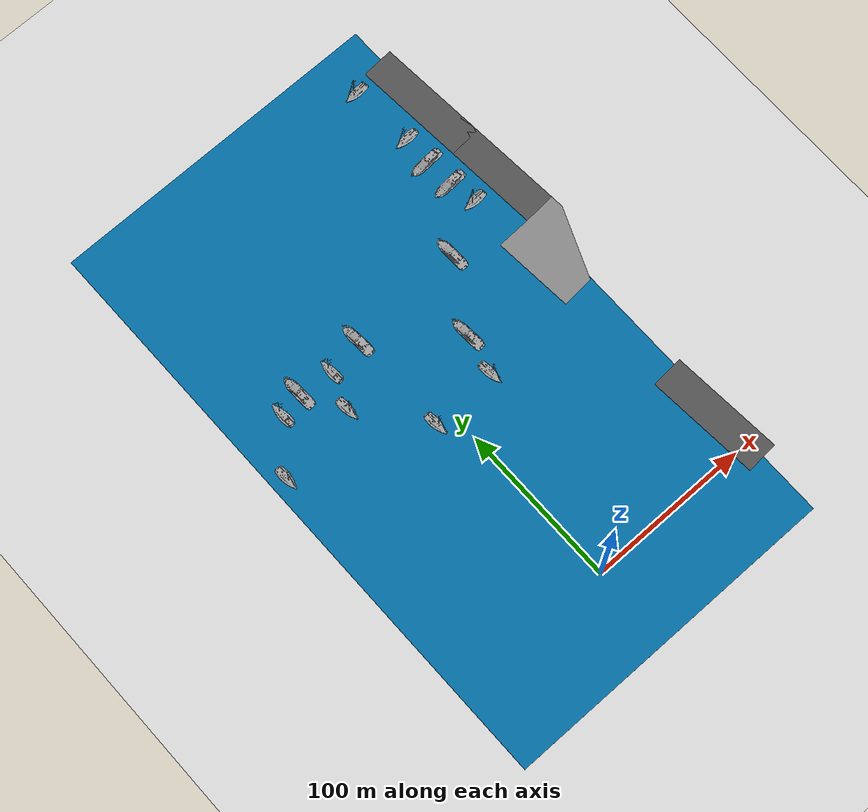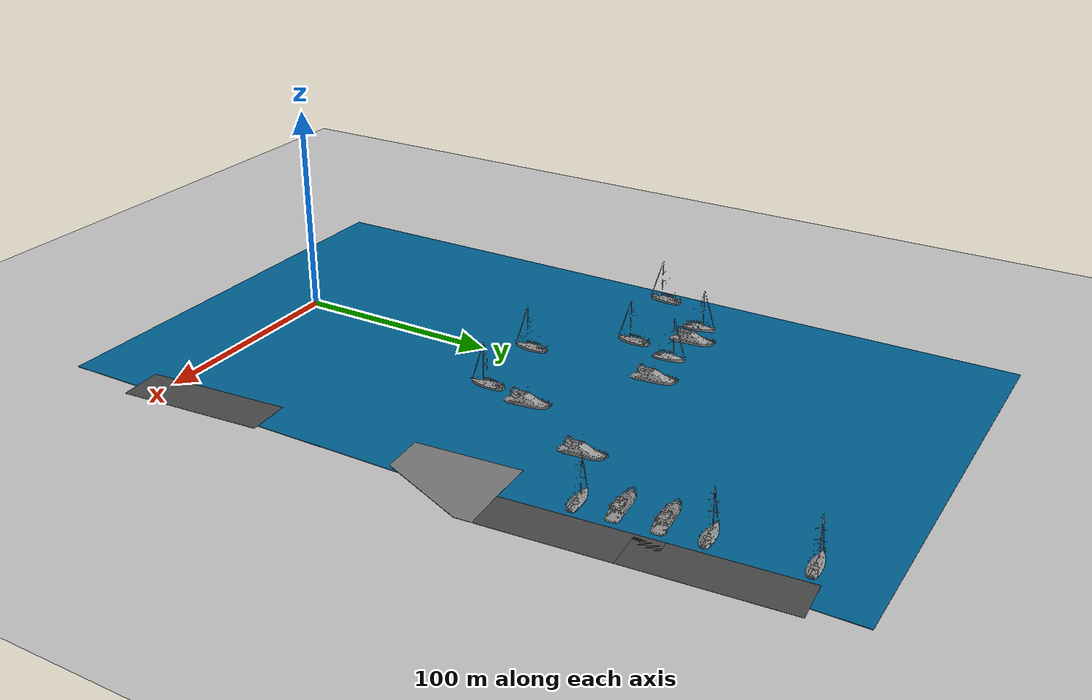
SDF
<sdf version="1.7">
 <world name="default">
  <model name="ground_plane">
   <static>1</static>
   <link name="link">
    <collision name="collision">
     <geometry><plane><normal>0 0 1</normal><size>100 100</size></plane></geometry>
     <surface><friction><ode><mu>100</mu><mu2>50</mu2></ode></friction></surface>
    </collision>
    <visual name="visual">
     <cast_shadows>0</cast_shadows>
     <geometry><plane><normal>0 0 1</normal><size>100 100</size></plane></geometry>
     <material>
      <script><uri>file://media/materials/scripts/gazebo.material</uri><name>Gazebo/Grey</name></script>
     </material>
    </visual>
   </link>
  </model>
  <model name="asphalt_plane">
   <link name="link">
    <inertial>
     <mass>1</mass>
     <inertia><ixx>1</ixx><ixy>0</ixy><ixz>0</ixz><iyy>1</iyy><iyz>0</iyz><izz>1</izz></inertia>
    </inertial>
    <visual name="visual">
     <cast_shadows>0</cast_shadows>
     <geometry><box><size>70 20 0.1</size></box></geometry>
     <material>
      <script>
       <uri>model://asphalt_plane/materials/scripts</uri>
       <uri>model://asphalt_plane/materials/textures</uri>
       <name>vrc/asphalt</name>
      </script>
      <shader type="pixel"><normal_map>__default__</normal_map></shader>
      <ambient>0.5 0.5 0.5 1</ambient>
      <diffuse>0.5 0.5 0.5 1</diffuse>
      <specular>0.2 0.2 0.2 1</specular>
      <emissive>0 0 0 1</emissive>
     </material>
    </visual>
    <collision name="collision">
     <geometry><box><size>70 20 0.1</size></box></geometry>
     <surface>
      <friction>
       <ode><mu>1</mu><mu2>1</mu2><fdir1>0 0 0</fdir1><slip1>0.001</slip1><slip2>1e-05</slip2></ode>
       <torsional>
        <coefficient>1</coefficient>
        <patch_radius>0</patch_radius>
        <surface_radius>0</surface_radius>
        <use_patch_radius>1</use_patch_radius>
        <ode><slip>0</slip></ode>
       </torsional>
      </friction>
      <bounce><restitution_coefficient>0</restitution_coefficient><threshold>1e+06</threshold></bounce>
      <contact>
       <collide_without_contact>0</collide_without_contact>
       <collide_without_contact_bitmask>1</collide_without_contact_bitmask>
       <collide_bitmask>1</collide_bitmask>
       <ode>
        <soft_cfm>0</soft_cfm>
        <soft_erp>0.2</soft_erp>
        <kp>1e+13</kp>
        <kd>1</kd>
        <max_vel>0.01</max_vel>
        <min_depth>0</min_depth>
       </ode>
       <bullet>
        <split_impulse>1</split_impulse>
        <split_impulse_penetration_threshold>-0.01</split_impulse_penetration_threshold>
        <soft_cfm>0</soft_cfm>
        <soft_erp>0.2</soft_erp>
        <kp>1e+13</kp>
        <kd>1</kd>
       </bullet>
      </contact>
     </surface>
    </collision>
   </link>
   <static>1</static>
   <pose>105.889 23.3175 1.215 0 0 -1.498</pose>
  </model>
  <model name="sailboat_1_clone_0_clone_4">
   <static>1</static>
   <link name="link">
    <visual name="visual">
     <pose>0 0 10.5 1.57 -0 0</pose>
     <geometry>
      <mesh>
       <uri>/home/albert/marinero_ws/src/marinero_simulations/models/sailboat_1/meshes/Sailboat.stl</uri>
       <scale>1800 1800 1800</scale>
      </mesh>
     </geometry>
     <material>
      <script><uri>file://media/materials/scripts/gazebo.material</uri><name>Gazebo/Grey</name></script>
     </material>
    </visual>
    <collision name="collision">
     <pose>0 0 10.5 1.57 -0 0</pose>
     <geometry>
      <mesh>
       <uri>/home/albert/marinero_ws/src/marinero_simulations/models/sailboat_1/meshes/Sailboat.stl</uri>
       <scale>1800 1800 1800</scale>
      </mesh>
     </geometry>
    </collision>
   </link>
   <pose>-41.2957 158.662 -0.195807 0 -0 1.61242</pose>
  </model>
  <model name="yacht_1_clone_2">
   <static>1</static>
   <link name="link">
    <visual name="visual">
     <geometry>
      <mesh>
       <uri>/home/albert/marinero_ws/src/marinero_simulations/models/yacht_1/meshes/Yacht_v2.dae</uri>
       <scale>2.5 2.5 2.5</scale>
      </mesh>
     </geometry>
     <material>
      <script><uri>file://media/materials/scripts/gazebo.material</uri><name>Gazebo/Grey</name></script>
     </material>
    </visual>
    <collision name="collision">
     <geometry>
      <mesh>
       <uri>/home/albert/marinero_ws/src/marinero_simulations/models/yacht_1/meshes/Yacht_v2.dae</uri>
       <scale>2.5 2.5 2.5</scale>
      </mesh>
     </geometry>
    </collision>
   </link>
   <pose>-55.014 181.756 0.645733 0 0 -3.09722</pose>
  </model>
  <model name="sailboat_1_clone_1_clone">
   <static>1</static>
   <link name="link">
    <visual name="visual">
     <pose>0 0 10.5 1.57 -0 0</pose>
     <geometry>
      <mesh>
       <uri>/home/albert/marinero_ws/src/marinero_simulations/models/sailboat_1/meshes/Sailboat.stl</uri>
       <scale>1800 1800 1800</scale>
      </mesh>
     </geometry>
     <material>
      <script><uri>file://media/materials/scripts/gazebo.material</uri><name>Gazebo/Grey</name></script>
     </material>
    </visual>
    <collision name="collision">
     <pose>0 0 10.5 1.57 -0 0</pose>
     <geometry>
      <mesh>
       <uri>/home/albert/marinero_ws/src/marinero_simulations/models/sailboat_1/meshes/Sailboat.stl</uri>
       <scale>1800 1800 1800</scale>
      </mesh>
     </geometry>
    </collision>
   </link>
   <pose>-91.3271 151.127 -0.195807 0 -0 1.57597</pose>
  </model>
  <model name="yacht_1_clone_0_clone_clone_clone_0">
   <static>1</static>
   <link name="link">
    <visual name="visual">
     <geometry>
      <mesh>
       <uri>/home/albert/marinero_ws/src/marinero_simulations/models/yacht_1/meshes/Yacht_v2.dae</uri>
       <scale>2.5 2.5 2.5</scale>
      </mesh>
     </geometry>
     <material>
      <script><uri>file://media/materials/scripts/gazebo.material</uri><name>Gazebo/Grey</name></script>
     </material>
    </visual>
    <collision name="collision">
     <geometry>
      <mesh>
       <uri>/home/albert/marinero_ws/src/marinero_simulations/models/yacht_1/meshes/Yacht_v2.dae</uri>
       <scale>2.5 2.5 2.5</scale>
      </mesh>
     </geometry>
    </collision>
   </link>
   <pose>36.3254 145.546 0.645733 0 0 -3.07126</pose>
  </model>
  <model name="yacht_1_clone_0_clone_clone_clone_0_clone">
   <static>1</static>
   <link name="link">
    <visual name="visual">
     <geometry>
      <mesh>
       <uri>/home/albert/marinero_ws/src/marinero_simulations/models/yacht_1/meshes/Yacht_v2.dae</uri>
       <scale>2.5 2.5 2.5</scale>
      </mesh>
     </geometry>
     <material>
      <script><uri>file://media/materials/scripts/gazebo.material</uri><name>Gazebo/Grey</name></script>
     </material>
    </visual>
    <collision name="collision">
     <geometry>
      <mesh>
       <uri>/home/albert/marinero_ws/src/marinero_simulations/models/yacht_1/meshes/Yacht_v2.dae</uri>
       <scale>2.5 2.5 2.5</scale>
      </mesh>
     </geometry>
    </collision>
   </link>
   <pose>-11.2475 183.143 0.645733 0 0 -3.07126</pose>
  </model>
  <model name="yacht_1_clone_0_clone_clone_clone_0_clone_0">
   <static>1</static>
   <link name="link">
    <visual name="visual">
     <geometry>
      <mesh>
       <uri>/home/albert/marinero_ws/src/marinero_simulations/models/yacht_1/meshes/Yacht_v2.dae</uri>
       <scale>2.5 2.5 2.5</scale>
      </mesh>
     </geometry>
     <material>
      <script><uri>file://media/materials/scripts/gazebo.material</uri><name>Gazebo/Grey</name></script>
     </material>
    </visual>
    <collision name="collision">
     <geometry>
      <mesh>
       <uri>/home/albert/marinero_ws/src/marinero_simulations/models/yacht_1/meshes/Yacht_v2.dae</uri>
       <scale>2.5 2.5 2.5</scale>
      </mesh>
     </geometry>
    </collision>
   </link>
   <pose>61.0807 186.467 0.645733 0 0 -3.102</pose>
  </model>
  <model name="asphalt_plane_clone_clone_0_clone_clone">
   <link name="link">
    <inertial>
     <mass>1</mass>
     <inertia><ixx>1</ixx><ixy>0</ixy><ixz>0</ixz><iyy>1</iyy><iyz>0</iyz><izz>1</izz></inertia>
    </inertial>
    <visual name="visual">
     <cast_shadows>0</cast_shadows>
     <geometry><box><size>70 20 0.1</size></box></geometry>
     <material>
      <script>
       <uri>model://asphalt_plane/materials/scripts</uri>
       <uri>model://asphalt_plane/materials/textures</uri>
       <name>vrc/asphalt</name>
      </script>
      <shader type="pixel"><normal_map>__default__</normal_map></shader>
      <ambient>0.5 0.5 0.5 1</ambient>
      <diffuse>0.5 0.5 0.5 1</diffuse>
      <specular>0.2 0.2 0.2 1</specular>
      <emissive>0 0 0 1</emissive>
     </material>
    </visual>
    <collision name="collision">
     <geometry><box><size>70 20 0.1</size></box></geometry>
     <surface>
      <friction>
       <ode><mu>1</mu><mu2>1</mu2><fdir1>0 0 0</fdir1><slip1>0.001</slip1><slip2>1e-05</slip2></ode>
       <torsional>
        <coefficient>1</coefficient>
        <patch_radius>0</patch_radius>
        <surface_radius>0</surface_radius>
        <use_patch_radius>1</use_patch_radius>
        <ode><slip>0</slip></ode>
       </torsional>
      </friction>
      <bounce><restitution_coefficient>0</restitution_coefficient><threshold>1e+06</threshold></bounce>
      <contact>
       <collide_without_contact>0</collide_without_contact>
       <collide_without_contact_bitmask>1</collide_without_contact_bitmask>
       <collide_bitmask>1</collide_bitmask>
       <ode>
        <soft_cfm>0</soft_cfm>
        <soft_erp>0.2</soft_erp>
        <kp>1e+13</kp>
        <kd>1</kd>
        <max_vel>0.01</max_vel>
        <min_depth>0</min_depth>
       </ode>
       <bullet>
        <split_impulse>1</split_impulse>
        <split_impulse_penetration_threshold>-0.01</split_impulse_penetration_threshold>
        <soft_cfm>0</soft_cfm>
        <soft_erp>0.2</soft_erp>
        <kp>1e+13</kp>
        <kd>1</kd>
       </bullet>
      </contact>
     </surface>
    </collision>
   </link>
   <static>1</static>
   <pose>113.279 210.094 1.215 0 0 -1.5</pose>
  </model>
  <model name="yacht_1_clone_0_clone_clone_clone_0_clone_0_clone">
   <static>1</static>
   <link name="link">
    <visual name="visual">
     <geometry>
      <mesh>
       <uri>/home/albert/marinero_ws/src/marinero_simulations/models/yacht_1/meshes/Yacht_v2.dae</uri>
       <scale>2.5 2.5 2.5</scale>
      </mesh>
     </geometry>
     <material>
      <script><uri>file://media/materials/scripts/gazebo.material</uri><name>Gazebo/Grey</name></script>
     </material>
    </visual>
    <collision name="collision">
     <geometry>
      <mesh>
       <uri>/home/albert/marinero_ws/src/marinero_simulations/models/yacht_1/meshes/Yacht_v2.dae</uri>
       <scale>2.5 2.5 2.5</scale>
      </mesh>
     </geometry>
    </collision>
   </link>
   <pose>88.8504 219.518 0.645733 0 0 -1.5029</pose>
  </model>
  <model name="yacht_1_clone_0_clone_clone_clone_0_clone_0_clone_clone">
   <static>1</static>
   <link name="link">
    <visual name="visual">
     <geometry>
      <mesh>
       <uri>/home/albert/marinero_ws/src/marinero_simulations/models/yacht_1/meshes/Yacht_v2.dae</uri>
       <scale>2.5 2.5 2.5</scale>
      </mesh>
     </geometry>
     <material>
      <script><uri>file://media/materials/scripts/gazebo.material</uri><name>Gazebo/Grey</name></script>
     </material>
    </visual>
    <collision name="collision">
     <geometry>
      <mesh>
       <uri>/home/albert/marinero_ws/src/marinero_simulations/models/yacht_1/meshes/Yacht_v2.dae</uri>
       <scale>2.5 2.5 2.5</scale>
      </mesh>
     </geometry>
    </collision>
   </link>
   <pose>87.6186 237.865 0.645733 0 0 -1.5029</pose>
  </model>
  <model name="asphalt_plane_angle_section">
   <link name="link">
    <inertial>
     <mass>1</mass>
     <inertia><ixx>1</ixx><ixy>0</ixy><ixz>0</ixz><iyy>1</iyy><iyz>0</iyz><izz>1</izz></inertia>
    </inertial>
    <visual name="visual">
     <geometry>
      <mesh>
       <uri>/home/albert/marinero_ws/src/marinero_simulations/models/asphalt_plane_angle_section/meshes/asphalt_plane_angle_section.dae</uri>
       <scale>1 1 1</scale>
      </mesh>
     </geometry>
     <material>
      <script>
       <uri>/home/albert/marinero_ws/src/marinero_simulations/models/asphalt_plane_angle_section/materials/scripts</uri>
       <uri>/home/albert/marinero_ws/src/marinero_simulations/models/asphalt_plane_angle_section/materials/textures</uri>
       <name>asphalt/texture</name>
      </script>
      <shader type="pixel"><normal_map>__default__</normal_map></shader>
      <ambient>0.5 0.5 0.5 1</ambient>
      <diffuse>0.5 0.5 0.5 1</diffuse>
      <specular>0.2 0.2 0.2 1</specular>
      <emissive>0 0 0 1</emissive>
     </material>
    </visual>
    <collision name="collision">
     <geometry>
      <mesh>
       <uri>/home/albert/marinero_ws/src/marinero_simulations/models/asphalt_plane_angle_section/meshes/asphalt_plane_angle_section.dae</uri>
       <scale>1 1 1</scale>
      </mesh>
     </geometry>
     <surface>
      <friction>
       <ode><mu>1</mu><mu2>1</mu2><fdir1>0 0 0</fdir1><slip1>0.001</slip1><slip2>1e-05</slip2></ode>
       <torsional>
        <coefficient>1</coefficient>
        <patch_radius>0</patch_radius>
        <surface_radius>0</surface_radius>
        <use_patch_radius>1</use_patch_radius>
        <ode><slip>0</slip></ode>
       </torsional>
      </friction>
      <bounce><restitution_coefficient>0</restitution_coefficient><threshold>1e+06</threshold></bounce>
      <contact>
       <collide_without_contact>0</collide_without_contact>
       <collide_without_contact_bitmask>1</collide_without_contact_bitmask>
       <collide_bitmask>1</collide_bitmask>
       <ode>
        <soft_cfm>0</soft_cfm>
        <soft_erp>0.2</soft_erp>
        <kp>1e+13</kp>
        <kd>1</kd>
        <max_vel>0.01</max_vel>
        <min_depth>0</min_depth>
       </ode>
       <bullet>
        <split_impulse>1</split_impulse>
        <split_impulse_penetration_threshold>-0.01</split_impulse_penetration_threshold>
        <soft_cfm>0</soft_cfm>
        <soft_erp>0.2</soft_erp>
        <kp>1e+13</kp>
        <kd>1</kd>
       </bullet>
      </contact>
     </surface>
    </collision>
   </link>
   <static>1</static>
   <pose>96.5705 149.492 1.215 0 0 -1.4967</pose>
  </model>
  <model name="sailboat_1_clone_0_clone_3_clone">
   <static>1</static>
   <link name="link">
    <visual name="visual">
     <pose>0 0 10.5 1.57 -0 0</pose>
     <geometry>
      <mesh>
       <uri>/home/albert/marinero_ws/src/marinero_simulations/models/sailboat_1/meshes/Sailboat.stl</uri>
       <scale>1800 1800 1800</scale>
      </mesh>
     </geometry>
     <material>
      <script><uri>file://media/materials/scripts/gazebo.material</uri><name>Gazebo/Grey</name></script>
     </material>
    </visual>
    <collision name="collision">
     <pose>0 0 10.5 1.57 -0 0</pose>
     <geometry>
      <mesh>
       <uri>/home/albert/marinero_ws/src/marinero_simulations/models/sailboat_1/meshes/Sailboat.stl</uri>
       <scale>1800 1800 1800</scale>
      </mesh>
     </geometry>
    </collision>
   </link>
   <pose>-10.7866 120.159 -0.195807 0 -0 1.63495</pose>
  </model>
  <model name="sailboat_1_clone_0_clone_3_clone_0">
   <static>1</static>
   <link name="link">
    <visual name="visual">
     <pose>0 0 10.5 1.57 -0 0</pose>
     <geometry>
      <mesh>
       <uri>/home/albert/marinero_ws/src/marinero_simulations/models/sailboat_1/meshes/Sailboat.stl</uri>
       <scale>1800 1800 1800</scale>
      </mesh>
     </geometry>
     <material>
      <script><uri>file://media/materials/scripts/gazebo.material</uri><name>Gazebo/Grey</name></script>
     </material>
    </visual>
    <collision name="collision">
     <pose>0 0 10.5 1.57 -0 0</pose>
     <geometry>
      <mesh>
       <uri>/home/albert/marinero_ws/src/marinero_simulations/models/sailboat_1/meshes/Sailboat.stl</uri>
       <scale>1800 1800 1800</scale>
      </mesh>
     </geometry>
    </collision>
   </link>
   <pose>30.6545 122.417 -0.195807 0 -0 1.63495</pose>
  </model>
  <model name="sailboat_1_clone_clone">
   <static>1</static>
   <link name="link">
    <visual name="visual">
     <pose>0 0 10.5 1.57 -0 0</pose>
     <geometry>
      <mesh>
       <uri>/home/albert/marinero_ws/src/marinero_simulations/models/sailboat_1/meshes/Sailboat.stl</uri>
       <scale>1800 1800 1800</scale>
      </mesh>
     </geometry>
     <material>
      <script><uri>file://media/materials/scripts/gazebo.material</uri><name>Gazebo/Grey</name></script>
     </material>
    </visual>
    <collision name="collision">
     <pose>0 0 10.5 1.57 -0 0</pose>
     <geometry>
      <mesh>
       <uri>/home/albert/marinero_ws/src/marinero_simulations/models/sailboat_1/meshes/Sailboat.stl</uri>
       <scale>1800 1800 1800</scale>
      </mesh>
     </geometry>
    </collision>
   </link>
   <pose>-69.9911 178.942 -0.195807 0 0 -1.52083</pose>
  </model>
  <model name="sailboat_1_clone_clone_0">
   <static>1</static>
   <link name="link">
    <visual name="visual">
     <pose>0 0 10.5 1.57 -0 0</pose>
     <geometry>
      <mesh>
       <uri>/home/albert/marinero_ws/src/marinero_simulations/models/sailboat_1/meshes/Sailboat.stl</uri>
       <scale>1800 1800 1800</scale>
      </mesh>
     </geometry>
     <material>
      <script><uri>file://media/materials/scripts/gazebo.material</uri><name>Gazebo/Grey</name></script>
     </material>
    </visual>
    <collision name="collision">
     <pose>0 0 10.5 1.57 -0 0</pose>
     <geometry>
      <mesh>
       <uri>/home/albert/marinero_ws/src/marinero_simulations/models/sailboat_1/meshes/Sailboat.stl</uri>
       <scale>1800 1800 1800</scale>
      </mesh>
     </geometry>
    </collision>
   </link>
   <pose>-33.9201 180.228 -0.195807 0 0 -1.52083</pose>
  </model>
  <model name="sea_plane">
   <link name="link">
    <inertial>
     <mass>5.27875e+06</mass>
     <inertia>
      <ixx>4.66688e+09</ixx>
      <ixy>0</ixy>
      <ixz>0</ixz>
      <iyy>1.84866e+10</iyy>
      <iyz>0</iyz>
      <izz>2.31535e+10</izz>
     </inertia>
    </inertial>
    <visual name="visual">
     <cast_shadows>0</cast_shadows>
     <geometry><box><size>210 375 0.25</size></box></geometry>
     <material>
      <script>
       <uri>model://sea_plane/materials/scripts</uri>
       <uri>model://sea_plane/materials/textures</uri>
       <name>vrc/sea</name>
      </script>
      <shader type="pixel"><normal_map>__default__</normal_map></shader>
      <ambient>0 0.4 0.6 0</ambient>
      <diffuse>0 0.4 0.6 1</diffuse>
      <specular>0.2 0.2 0.2 1</specular>
      <emissive>0 0 0 1</emissive>
     </material>
    </visual>
    <collision name="collision">
     <geometry><box><size>210 375 0.25</size></box></geometry>
     <surface>
      <friction>
       <ode><mu>1</mu><mu2>1</mu2><fdir1>0 0 0</fdir1><slip1>0</slip1><slip2>0</slip2></ode>
       <torsional>
        <coefficient>1</coefficient>
        <patch_radius>0</patch_radius>
        <surface_radius>0</surface_radius>
        <use_patch_radius>1</use_patch_radius>
        <ode><slip>0</slip></ode>
       </torsional>
      </friction>
      <bounce><restitution_coefficient>0</restitution_coefficient><threshold>1e+06</threshold></bounce>
      <contact>
       <collide_without_contact>0</collide_without_contact>
       <collide_without_contact_bitmask>1</collide_without_contact_bitmask>
       <collide_bitmask>1</collide_bitmask>
       <ode>
        <soft_cfm>0</soft_cfm>
        <soft_erp>0.2</soft_erp>
        <kp>1e+13</kp>
        <kd>1</kd>
        <max_vel>0.01</max_vel>
        <min_depth>0</min_depth>
       </ode>
       <bullet>
        <split_impulse>1</split_impulse>
        <split_impulse_penetration_threshold>-0.01</split_impulse_penetration_threshold>
        <soft_cfm>0</soft_cfm>
        <soft_erp>0.2</soft_erp>
        <kp>1e+13</kp>
        <kd>1</kd>
       </bullet>
      </contact>
     </surface>
    </collision>
   </link>
   <static>1</static>
   <pose>4.61812 137.398 0.125 0 -0 0</pose>
  </model>
  <model name="sailboat_1_clone_0_clone_3_clone_0_clone">
   <static>1</static>
   <link name="link">
    <visual name="visual">
     <pose>0 0 10.5 1.57 -0 0</pose>
     <geometry>
      <mesh>
       <uri>/home/albert/marinero_ws/src/marinero_simulations/models/sailboat_1/meshes/Sailboat.stl</uri>
       <scale>1800 1800 1800</scale>
      </mesh>
     </geometry>
     <material>
      <script><uri>file://media/materials/scripts/gazebo.material</uri><name>Gazebo/Grey</name></script>
     </material>
    </visual>
    <collision name="collision">
     <pose>0 0 10.5 1.57 -0 0</pose>
     <geometry>
      <mesh>
       <uri>/home/albert/marinero_ws/src/marinero_simulations/models/sailboat_1/meshes/Sailboat.stl</uri>
       <scale>1800 1800 1800</scale>
      </mesh>
     </geometry>
    </collision>
   </link>
   <pose>88.2988 256.149 -0.195807 0 -0 0.073528</pose>
  </model>
  <model name="sailboat_1_clone_0_clone_3_clone_0_clone_clone">
   <static>1</static>
   <link name="link">
    <visual name="visual">
     <pose>0 0 10.5 1.57 -0 0</pose>
     <geometry>
      <mesh>
       <uri>/home/albert/marinero_ws/src/marinero_simulations/models/sailboat_1/meshes/Sailboat.stl</uri>
       <scale>1800 1800 1800</scale>
      </mesh>
     </geometry>
     <material>
      <script><uri>file://media/materials/scripts/gazebo.material</uri><name>Gazebo/Grey</name></script>
     </material>
    </visual>
    <collision name="collision">
     <pose>0 0 10.5 1.57 -0 0</pose>
     <geometry>
      <mesh>
       <uri>/home/albert/marinero_ws/src/marinero_simulations/models/sailboat_1/meshes/Sailboat.stl</uri>
       <scale>1800 1800 1800</scale>
      </mesh>
     </geometry>
    </collision>
   </link>
   <pose>92.098 202.826 -0.195807 0 -0 0.073528</pose>
  </model>
  <model name="sailboat_1_clone_0_clone_3_clone_0_clone_clone_0">
   <static>1</static>
   <link name="link">
    <visual name="visual">
     <pose>0 0 10.5 1.57 -0 0</pose>
     <geometry>
      <mesh>
       <uri>/home/albert/marinero_ws/src/marinero_simulations/models/sailboat_1/meshes/Sailboat.stl</uri>
       <scale>1800 1800 1800</scale>
      </mesh>
     </geometry>
     <material>
      <script><uri>file://media/materials/scripts/gazebo.material</uri><name>Gazebo/Grey</name></script>
     </material>
    </visual>
    <collision name="collision">
     <pose>0 0 10.5 1.57 -0 0</pose>
     <geometry>
      <mesh>
       <uri>/home/albert/marinero_ws/src/marinero_simulations/models/sailboat_1/meshes/Sailboat.stl</uri>
       <scale>1800 1800 1800</scale>
      </mesh>
     </geometry>
    </collision>
   </link>
   <pose>85.7133 296.327 -0.195807 0 -0 0.073528</pose>
  </model>
  <model name="asphalt_plane_clone_clone_0_clone_clone_clone">
   <link name="link">
    <inertial>
     <mass>1</mass>
     <inertia><ixx>1</ixx><ixy>0</ixy><ixz>0</ixz><iyy>1</iyy><iyz>0</iyz><izz>1</izz></inertia>
    </inertial>
    <visual name="visual">
     <cast_shadows>0</cast_shadows>
     <geometry><box><size>70 20 0.1</size></box></geometry>
     <material>
      <script>
       <uri>model://asphalt_plane/materials/scripts</uri>
       <uri>model://asphalt_plane/materials/textures</uri>
       <name>vrc/asphalt</name>
      </script>
      <shader type="pixel"><normal_map>__default__</normal_map></shader>
      <ambient>0.5 0.5 0.5 1</ambient>
      <diffuse>0.5 0.5 0.5 1</diffuse>
      <specular>0.2 0.2 0.2 1</specular>
      <emissive>0 0 0 1</emissive>
     </material>
    </visual>
    <collision name="collision">
     <geometry><box><size>70 20 0.1</size></box></geometry>
     <surface>
      <friction>
       <ode><mu>1</mu><mu2>1</mu2><fdir1>0 0 0</fdir1><slip1>0.001</slip1><slip2>1e-05</slip2></ode>
       <torsional>
        <coefficient>1</coefficient>
        <patch_radius>0</patch_radius>
        <surface_radius>0</surface_radius>
        <use_patch_radius>1</use_patch_radius>
        <ode><slip>0</slip></ode>
       </torsional>
      </friction>
      <bounce><restitution_coefficient>0</restitution_coefficient><threshold>1e+06</threshold></bounce>
      <contact>
       <collide_without_contact>0</collide_without_contact>
       <collide_without_contact_bitmask>1</collide_without_contact_bitmask>
       <collide_bitmask>1</collide_bitmask>
       <ode>
        <soft_cfm>0</soft_cfm>
        <soft_erp>0.2</soft_erp>
        <kp>1e+13</kp>
        <kd>1</kd>
        <max_vel>0.01</max_vel>
        <min_depth>0</min_depth>
       </ode>
       <bullet>
        <split_impulse>1</split_impulse>
        <split_impulse_penetration_threshold>-0.01</split_impulse_penetration_threshold>
        <soft_cfm>0</soft_cfm>
        <soft_erp>0.2</soft_erp>
        <kp>1e+13</kp>
        <kd>1</kd>
       </bullet>
      </contact>
     </surface>
    </collision>
   </link>
   <static>1</static>
   <pose>109.193 267.711 1.215 0 0 -1.5</pose>
  </model>
 </world>
</sdf>
